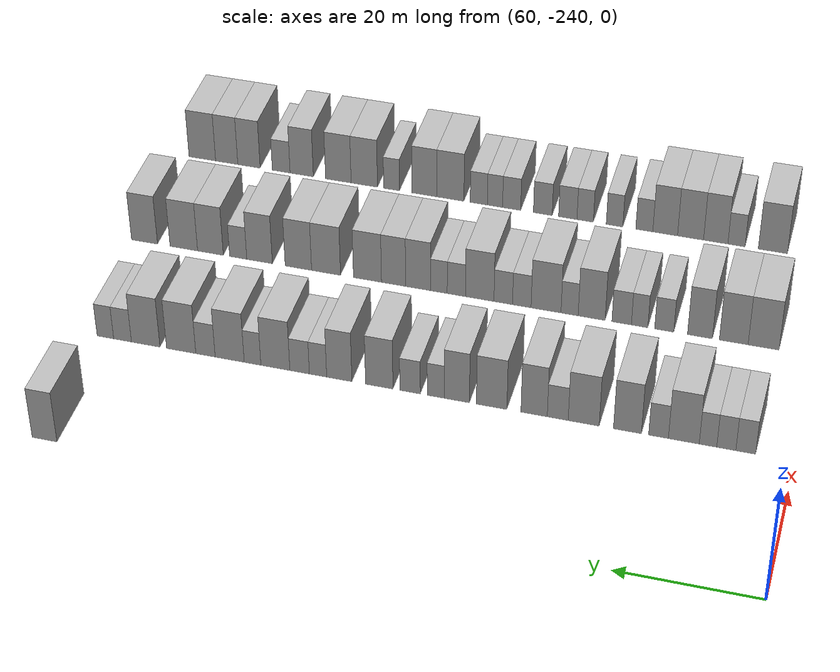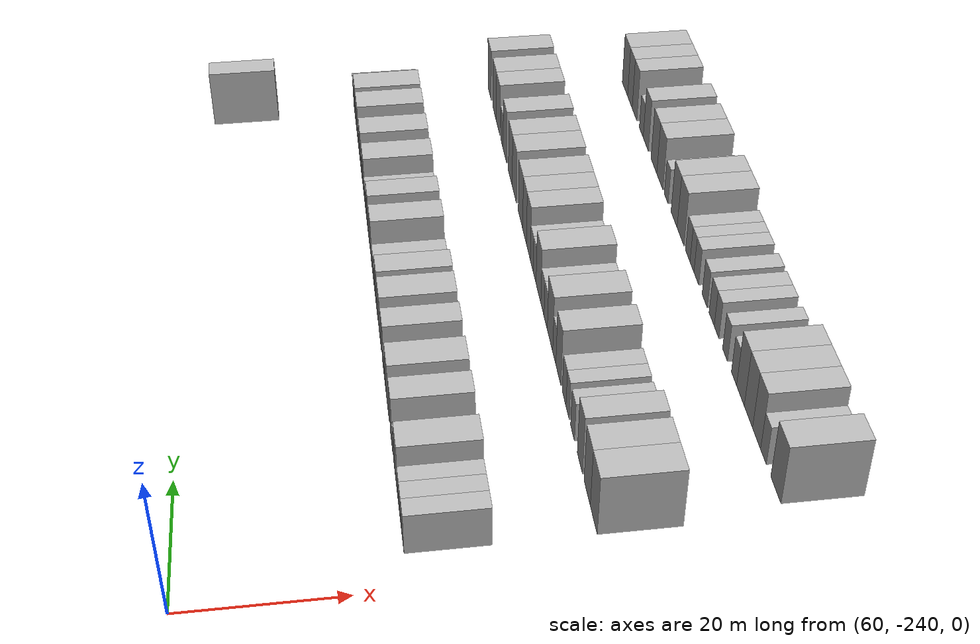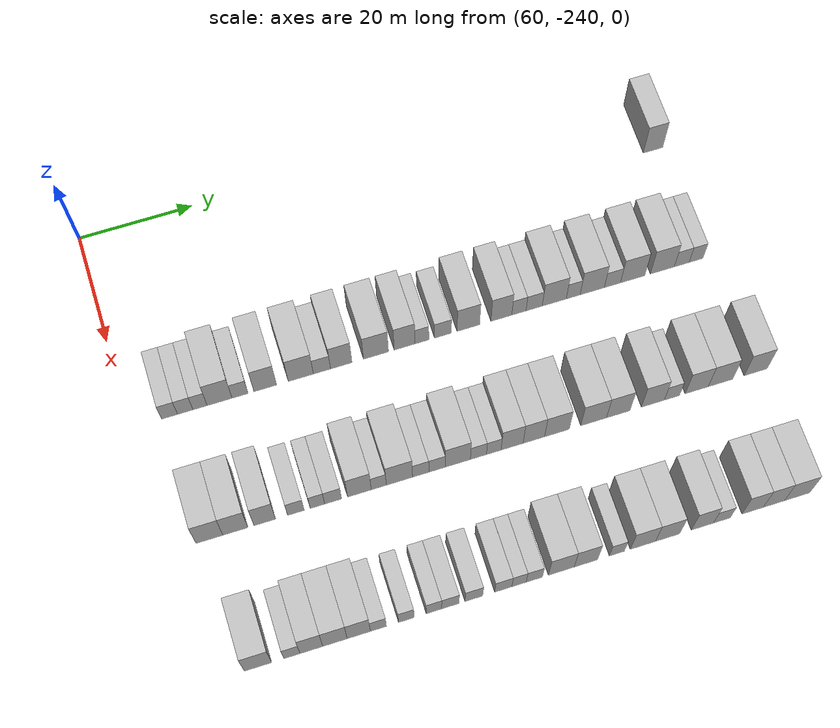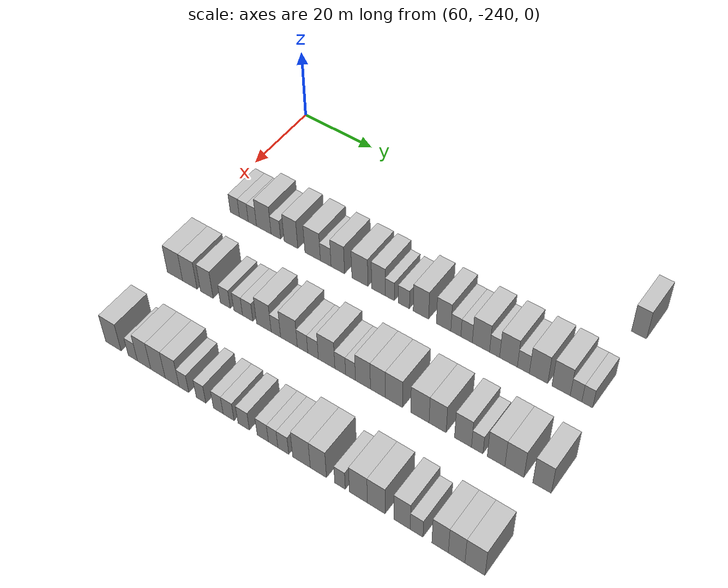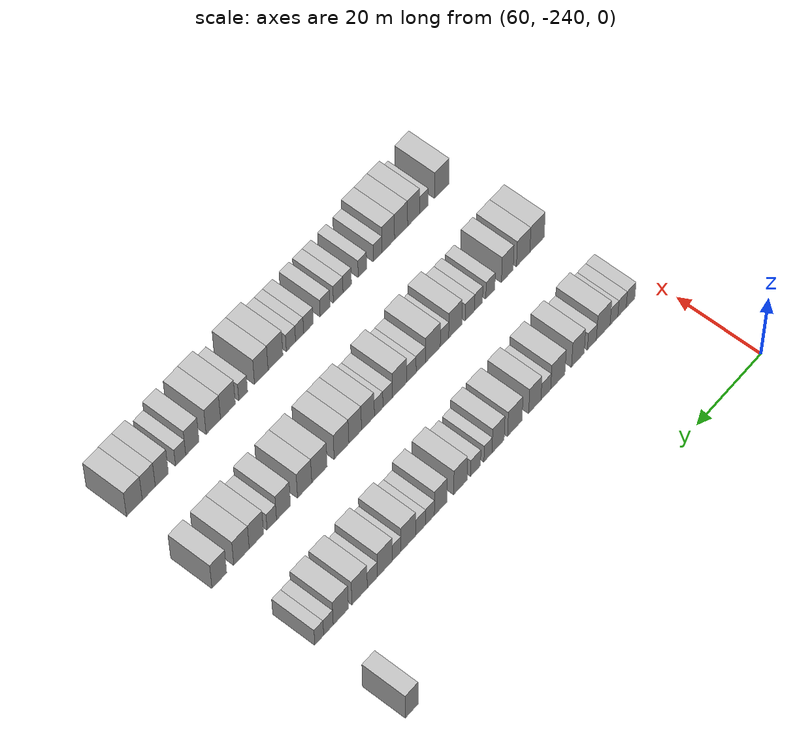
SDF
<sdf version="1.6">
 <world name="default">
  <model name="building_421">
   <static>1</static>
   <pose>69.0000 -140.4311 0 0.000000 0.000000 0.000000</pose>
   <link name="link">
    <pose>0 0 4.50 0 0 0</pose>
    <collision name="collision"><geometry><box><size>10.0000 3.6135 9.0000</size></box></geometry></collision>
    <visual name="visual">
     <cast_shadows>0</cast_shadows>
     <geometry><box><size>10.0000 3.6135 9.0000</size></box></geometry>
     <material>
      <script>
       <uri>model://HANNAS_wall/materials/scripts</uri>
       <uri>model://HANNAS_wall/materials/textures</uri>
       <name>vrc/HANNAS_wall</name>
      </script>
     </material>
    </visual>
   </link>
  </model>
  <model name="building_582">
   <static>1</static>
   <pose>91.0000 -233.3052 0 0.000000 0.000000 0.000000</pose>
   <link name="link">
    <pose>0 0 3.00 0 0 0</pose>
    <collision name="collision"><geometry><box><size>10.0000 2.7081 6.0000</size></box></geometry></collision>
    <visual name="visual">
     <cast_shadows>0</cast_shadows>
     <geometry><box><size>10.0000 2.7081 6.0000</size></box></geometry>
     <material>
      <script>
       <uri>model://HANNAS_wall/materials/scripts</uri>
       <uri>model://HANNAS_wall/materials/textures</uri>
       <name>vrc/HANNAS_wall</name>
      </script>
     </material>
    </visual>
   </link>
  </model>
  <model name="building_583">
   <static>1</static>
   <pose>91.0000 -230.6449 0 0.000000 0.000000 0.000000</pose>
   <link name="link">
    <pose>0 0 3.00 0 0 0</pose>
    <collision name="collision"><geometry><box><size>10.0000 2.6125 6.0000</size></box></geometry></collision>
    <visual name="visual">
     <cast_shadows>0</cast_shadows>
     <geometry><box><size>10.0000 2.6125 6.0000</size></box></geometry>
     <material>
      <script>
       <uri>model://HANNAS_wall/materials/scripts</uri>
       <uri>model://HANNAS_wall/materials/textures</uri>
       <name>vrc/HANNAS_wall</name>
      </script>
     </material>
    </visual>
   </link>
  </model>
  <model name="building_584">
   <static>1</static>
   <pose>91.0000 -228.1305 0 0.000000 0.000000 0.000000</pose>
   <link name="link">
    <pose>0 0 3.00 0 0 0</pose>
    <collision name="collision"><geometry><box><size>10.0000 2.4162 6.0000</size></box></geometry></collision>
    <visual name="visual">
     <cast_shadows>0</cast_shadows>
     <geometry><box><size>10.0000 2.4162 6.0000</size></box></geometry>
     <material>
      <script>
       <uri>model://HANNAS_wall/materials/scripts</uri>
       <uri>model://HANNAS_wall/materials/textures</uri>
       <name>vrc/HANNAS_wall</name>
      </script>
     </material>
    </visual>
   </link>
  </model>
  <model name="building_585">
   <static>1</static>
   <pose>91.0000 -224.7955 0 0.000000 0.000000 0.000000</pose>
   <link name="link">
    <pose>0 0 4.50 0 0 0</pose>
    <collision name="collision"><geometry><box><size>10.0000 4.2539 9.0000</size></box></geometry></collision>
    <visual name="visual">
     <cast_shadows>0</cast_shadows>
     <geometry><box><size>10.0000 4.2539 9.0000</size></box></geometry>
     <material>
      <script>
       <uri>model://HANNAS_wall/materials/scripts</uri>
       <uri>model://HANNAS_wall/materials/textures</uri>
       <name>vrc/HANNAS_wall</name>
      </script>
     </material>
    </visual>
   </link>
  </model>
  <model name="building_586">
   <static>1</static>
   <pose>91.0000 -221.2969 0 0.000000 0.000000 0.000000</pose>
   <link name="link">
    <pose>0 0 3.00 0 0 0</pose>
    <collision name="collision"><geometry><box><size>10.0000 2.7432 6.0000</size></box></geometry></collision>
    <visual name="visual">
     <cast_shadows>0</cast_shadows>
     <geometry><box><size>10.0000 2.7432 6.0000</size></box></geometry>
     <material>
      <script>
       <uri>model://HANNAS_wall/materials/scripts</uri>
       <uri>model://HANNAS_wall/materials/textures</uri>
       <name>vrc/HANNAS_wall</name>
      </script>
     </material>
    </visual>
   </link>
  </model>
  <model name="building_587">
   <static>1</static>
   <pose>91.0000 -216.9777 0 0.000000 0.000000 0.000000</pose>
   <link name="link">
    <pose>0 0 4.50 0 0 0</pose>
    <collision name="collision"><geometry><box><size>10.0000 3.8952 9.0000</size></box></geometry></collision>
    <visual name="visual">
     <cast_shadows>0</cast_shadows>
     <geometry><box><size>10.0000 3.8952 9.0000</size></box></geometry>
     <material>
      <script>
       <uri>model://HANNAS_wall/materials/scripts</uri>
       <uri>model://HANNAS_wall/materials/textures</uri>
       <name>vrc/HANNAS_wall</name>
      </script>
     </material>
    </visual>
   </link>
  </model>
  <model name="building_588">
   <static>1</static>
   <pose>91.0000 -210.8539 0 0.000000 0.000000 0.000000</pose>
   <link name="link">
    <pose>0 0 4.50 0 0 0</pose>
    <collision name="collision"><geometry><box><size>10.0000 4.3524 9.0000</size></box></geometry></collision>
    <visual name="visual">
     <cast_shadows>0</cast_shadows>
     <geometry><box><size>10.0000 4.3524 9.0000</size></box></geometry>
     <material>
      <script>
       <uri>model://HANNAS_wall/materials/scripts</uri>
       <uri>model://HANNAS_wall/materials/textures</uri>
       <name>vrc/HANNAS_wall</name>
      </script>
     </material>
    </visual>
   </link>
  </model>
  <model name="building_589">
   <static>1</static>
   <pose>91.0000 -207.1994 0 0.000000 0.000000 0.000000</pose>
   <link name="link">
    <pose>0 0 3.00 0 0 0</pose>
    <collision name="collision"><geometry><box><size>10.0000 2.9566 6.0000</size></box></geometry></collision>
    <visual name="visual">
     <cast_shadows>0</cast_shadows>
     <geometry><box><size>10.0000 2.9566 6.0000</size></box></geometry>
     <material>
      <script>
       <uri>model://HANNAS_wall/materials/scripts</uri>
       <uri>model://HANNAS_wall/materials/textures</uri>
       <name>vrc/HANNAS_wall</name>
      </script>
     </material>
    </visual>
   </link>
  </model>
  <model name="building_590">
   <static>1</static>
   <pose>91.0000 -203.8594 0 0.000000 0.000000 0.000000</pose>
   <link name="link">
    <pose>0 0 4.50 0 0 0</pose>
    <collision name="collision"><geometry><box><size>10.0000 3.7233 9.0000</size></box></geometry></collision>
    <visual name="visual">
     <cast_shadows>0</cast_shadows>
     <geometry><box><size>10.0000 3.7233 9.0000</size></box></geometry>
     <material>
      <script>
       <uri>model://HANNAS_wall/materials/scripts</uri>
       <uri>model://HANNAS_wall/materials/textures</uri>
       <name>vrc/HANNAS_wall</name>
      </script>
     </material>
    </visual>
   </link>
  </model>
  <model name="building_591">
   <static>1</static>
   <pose>91.0000 -197.8227 0 0.000000 0.000000 0.000000</pose>
   <link name="link">
    <pose>0 0 4.50 0 0 0</pose>
    <collision name="collision"><geometry><box><size>10.0000 4.3500 9.0000</size></box></geometry></collision>
    <visual name="visual">
     <cast_shadows>0</cast_shadows>
     <geometry><box><size>10.0000 4.3500 9.0000</size></box></geometry>
     <material>
      <script>
       <uri>model://HANNAS_wall/materials/scripts</uri>
       <uri>model://HANNAS_wall/materials/textures</uri>
       <name>vrc/HANNAS_wall</name>
      </script>
     </material>
    </visual>
   </link>
  </model>
  <model name="building_592">
   <static>1</static>
   <pose>91.0000 -192.8297 0 0.000000 0.000000 0.000000</pose>
   <link name="link">
    <pose>0 0 4.50 0 0 0</pose>
    <collision name="collision"><geometry><box><size>10.0000 3.6360 9.0000</size></box></geometry></collision>
    <visual name="visual">
     <cast_shadows>0</cast_shadows>
     <geometry><box><size>10.0000 3.6360 9.0000</size></box></geometry>
     <material>
      <script>
       <uri>model://HANNAS_wall/materials/scripts</uri>
       <uri>model://HANNAS_wall/materials/textures</uri>
       <name>vrc/HANNAS_wall</name>
      </script>
     </material>
    </visual>
   </link>
  </model>
  <model name="building_593">
   <static>1</static>
   <pose>91.0000 -189.7980 0 0.000000 0.000000 0.000000</pose>
   <link name="link">
    <pose>0 0 3.00 0 0 0</pose>
    <collision name="collision"><geometry><box><size>10.0000 2.4274 6.0000</size></box></geometry></collision>
    <visual name="visual">
     <cast_shadows>0</cast_shadows>
     <geometry><box><size>10.0000 2.4274 6.0000</size></box></geometry>
     <material>
      <script>
       <uri>model://HANNAS_wall/materials/scripts</uri>
       <uri>model://HANNAS_wall/materials/textures</uri>
       <name>vrc/HANNAS_wall</name>
      </script>
     </material>
    </visual>
   </link>
  </model>
  <model name="building_594">
   <static>1</static>
   <pose>91.0000 -186.1057 0 0.000000 0.000000 0.000000</pose>
   <link name="link">
    <pose>0 0 3.00 0 0 0</pose>
    <collision name="collision"><geometry><box><size>10.0000 2.9573 6.0000</size></box></geometry></collision>
    <visual name="visual">
     <cast_shadows>0</cast_shadows>
     <geometry><box><size>10.0000 2.9573 6.0000</size></box></geometry>
     <material>
      <script>
       <uri>model://HANNAS_wall/materials/scripts</uri>
       <uri>model://HANNAS_wall/materials/textures</uri>
       <name>vrc/HANNAS_wall</name>
      </script>
     </material>
    </visual>
   </link>
  </model>
  <model name="building_595">
   <static>1</static>
   <pose>91.0000 -181.6321 0 0.000000 0.000000 0.000000</pose>
   <link name="link">
    <pose>0 0 4.50 0 0 0</pose>
    <collision name="collision"><geometry><box><size>10.0000 3.9899 9.0000</size></box></geometry></collision>
    <visual name="visual">
     <cast_shadows>0</cast_shadows>
     <geometry><box><size>10.0000 3.9899 9.0000</size></box></geometry>
     <material>
      <script>
       <uri>model://HANNAS_wall/materials/scripts</uri>
       <uri>model://HANNAS_wall/materials/textures</uri>
       <name>vrc/HANNAS_wall</name>
      </script>
     </material>
    </visual>
   </link>
  </model>
  <model name="building_596">
   <static>1</static>
   <pose>91.0000 -175.7890 0 0.000000 0.000000 0.000000</pose>
   <link name="link">
    <pose>0 0 4.50 0 0 0</pose>
    <collision name="collision"><geometry><box><size>10.0000 3.6963 9.0000</size></box></geometry></collision>
    <visual name="visual">
     <cast_shadows>0</cast_shadows>
     <geometry><box><size>10.0000 3.6963 9.0000</size></box></geometry>
     <material>
      <script>
       <uri>model://HANNAS_wall/materials/scripts</uri>
       <uri>model://HANNAS_wall/materials/textures</uri>
       <name>vrc/HANNAS_wall</name>
      </script>
     </material>
    </visual>
   </link>
  </model>
  <model name="building_597">
   <static>1</static>
   <pose>91.0000 -172.6681 0 0.000000 0.000000 0.000000</pose>
   <link name="link">
    <pose>0 0 3.00 0 0 0</pose>
    <collision name="collision"><geometry><box><size>10.0000 2.5456 6.0000</size></box></geometry></collision>
    <visual name="visual">
     <cast_shadows>0</cast_shadows>
     <geometry><box><size>10.0000 2.5456 6.0000</size></box></geometry>
     <material>
      <script>
       <uri>model://HANNAS_wall/materials/scripts</uri>
       <uri>model://HANNAS_wall/materials/textures</uri>
       <name>vrc/HANNAS_wall</name>
      </script>
     </material>
    </visual>
   </link>
  </model>
  <model name="building_598">
   <static>1</static>
   <pose>91.0000 -169.9560 0 0.000000 0.000000 0.000000</pose>
   <link name="link">
    <pose>0 0 3.00 0 0 0</pose>
    <collision name="collision"><geometry><box><size>10.0000 2.8785 6.0000</size></box></geometry></collision>
    <visual name="visual">
     <cast_shadows>0</cast_shadows>
     <geometry><box><size>10.0000 2.8785 6.0000</size></box></geometry>
     <material>
      <script>
       <uri>model://HANNAS_wall/materials/scripts</uri>
       <uri>model://HANNAS_wall/materials/textures</uri>
       <name>vrc/HANNAS_wall</name>
      </script>
     </material>
    </visual>
   </link>
  </model>
  <model name="building_599">
   <static>1</static>
   <pose>91.0000 -166.3699 0 0.000000 0.000000 0.000000</pose>
   <link name="link">
    <pose>0 0 4.50 0 0 0</pose>
    <collision name="collision"><geometry><box><size>10.0000 4.2938 9.0000</size></box></geometry></collision>
    <visual name="visual">
     <cast_shadows>0</cast_shadows>
     <geometry><box><size>10.0000 4.2938 9.0000</size></box></geometry>
     <material>
      <script>
       <uri>model://HANNAS_wall/materials/scripts</uri>
       <uri>model://HANNAS_wall/materials/textures</uri>
       <name>vrc/HANNAS_wall</name>
      </script>
     </material>
    </visual>
   </link>
  </model>
  <model name="building_600">
   <static>1</static>
   <pose>91.0000 -162.9819 0 0.000000 0.000000 0.000000</pose>
   <link name="link">
    <pose>0 0 3.00 0 0 0</pose>
    <collision name="collision"><geometry><box><size>10.0000 2.4821 6.0000</size></box></geometry></collision>
    <visual name="visual">
     <cast_shadows>0</cast_shadows>
     <geometry><box><size>10.0000 2.4821 6.0000</size></box></geometry>
     <material>
      <script>
       <uri>model://HANNAS_wall/materials/scripts</uri>
       <uri>model://HANNAS_wall/materials/textures</uri>
       <name>vrc/HANNAS_wall</name>
      </script>
     </material>
    </visual>
   </link>
  </model>
  <model name="building_601">
   <static>1</static>
   <pose>91.0000 -159.5711 0 0.000000 0.000000 0.000000</pose>
   <link name="link">
    <pose>0 0 4.50 0 0 0</pose>
    <collision name="collision"><geometry><box><size>10.0000 4.3395 9.0000</size></box></geometry></collision>
    <visual name="visual">
     <cast_shadows>0</cast_shadows>
     <geometry><box><size>10.0000 4.3395 9.0000</size></box></geometry>
     <material>
      <script>
       <uri>model://HANNAS_wall/materials/scripts</uri>
       <uri>model://HANNAS_wall/materials/textures</uri>
       <name>vrc/HANNAS_wall</name>
      </script>
     </material>
    </visual>
   </link>
  </model>
  <model name="building_602">
   <static>1</static>
   <pose>91.0000 -155.9481 0 0.000000 0.000000 0.000000</pose>
   <link name="link">
    <pose>0 0 3.00 0 0 0</pose>
    <collision name="collision"><geometry><box><size>10.0000 2.9065 6.0000</size></box></geometry></collision>
    <visual name="visual">
     <cast_shadows>0</cast_shadows>
     <geometry><box><size>10.0000 2.9065 6.0000</size></box></geometry>
     <material>
      <script>
       <uri>model://HANNAS_wall/materials/scripts</uri>
       <uri>model://HANNAS_wall/materials/textures</uri>
       <name>vrc/HANNAS_wall</name>
      </script>
     </material>
    </visual>
   </link>
  </model>
  <model name="building_603">
   <static>1</static>
   <pose>91.0000 -152.2924 0 0.000000 0.000000 0.000000</pose>
   <link name="link">
    <pose>0 0 4.50 0 0 0</pose>
    <collision name="collision"><geometry><box><size>10.0000 4.4049 9.0000</size></box></geometry></collision>
    <visual name="visual">
     <cast_shadows>0</cast_shadows>
     <geometry><box><size>10.0000 4.4049 9.0000</size></box></geometry>
     <material>
      <script>
       <uri>model://HANNAS_wall/materials/scripts</uri>
       <uri>model://HANNAS_wall/materials/textures</uri>
       <name>vrc/HANNAS_wall</name>
      </script>
     </material>
    </visual>
   </link>
  </model>
  <model name="building_604">
   <static>1</static>
   <pose>91.0000 -146.9238 0 0.000000 0.000000 0.000000</pose>
   <link name="link">
    <pose>0 0 4.50 0 0 0</pose>
    <collision name="collision"><geometry><box><size>10.0000 4.3322 9.0000</size></box></geometry></collision>
    <visual name="visual">
     <cast_shadows>0</cast_shadows>
     <geometry><box><size>10.0000 4.3322 9.0000</size></box></geometry>
     <material>
      <script>
       <uri>model://HANNAS_wall/materials/scripts</uri>
       <uri>model://HANNAS_wall/materials/textures</uri>
       <name>vrc/HANNAS_wall</name>
      </script>
     </material>
    </visual>
   </link>
  </model>
  <model name="building_605">
   <static>1</static>
   <pose>91.0000 -143.4036 0 0.000000 0.000000 0.000000</pose>
   <link name="link">
    <pose>0 0 3.00 0 0 0</pose>
    <collision name="collision"><geometry><box><size>10.0000 2.7082 6.0000</size></box></geometry></collision>
    <visual name="visual">
     <cast_shadows>0</cast_shadows>
     <geometry><box><size>10.0000 2.7082 6.0000</size></box></geometry>
     <material>
      <script>
       <uri>model://HANNAS_wall/materials/scripts</uri>
       <uri>model://HANNAS_wall/materials/textures</uri>
       <name>vrc/HANNAS_wall</name>
      </script>
     </material>
    </visual>
   </link>
  </model>
  <model name="building_606">
   <static>1</static>
   <pose>91.0000 -140.7913 0 0.000000 0.000000 0.000000</pose>
   <link name="link">
    <pose>0 0 3.00 0 0 0</pose>
    <collision name="collision"><geometry><box><size>10.0000 2.5163 6.0000</size></box></geometry></collision>
    <visual name="visual">
     <cast_shadows>0</cast_shadows>
     <geometry><box><size>10.0000 2.5163 6.0000</size></box></geometry>
     <material>
      <script>
       <uri>model://HANNAS_wall/materials/scripts</uri>
       <uri>model://HANNAS_wall/materials/textures</uri>
       <name>vrc/HANNAS_wall</name>
      </script>
     </material>
    </visual>
   </link>
  </model>
  <model name="building_768">
   <static>1</static>
   <pose>113.0000 -232.3847 0 0.000000 0.000000 0.000000</pose>
   <link name="link">
    <pose>0 0 4.50 0 0 0</pose>
    <collision name="collision"><geometry><box><size>10.0000 4.4472 9.0000</size></box></geometry></collision>
    <visual name="visual">
     <cast_shadows>0</cast_shadows>
     <geometry><box><size>10.0000 4.4472 9.0000</size></box></geometry>
     <material>
      <script>
       <uri>model://HANNAS_wall/materials/scripts</uri>
       <uri>model://HANNAS_wall/materials/textures</uri>
       <name>vrc/HANNAS_wall</name>
      </script>
     </material>
    </visual>
   </link>
  </model>
  <model name="building_769">
   <static>1</static>
   <pose>113.0000 -228.0858 0 0.000000 0.000000 0.000000</pose>
   <link name="link">
    <pose>0 0 4.50 0 0 0</pose>
    <collision name="collision"><geometry><box><size>10.0000 4.1505 9.0000</size></box></geometry></collision>
    <visual name="visual">
     <cast_shadows>0</cast_shadows>
     <geometry><box><size>10.0000 4.1505 9.0000</size></box></geometry>
     <material>
      <script>
       <uri>model://HANNAS_wall/materials/scripts</uri>
       <uri>model://HANNAS_wall/materials/textures</uri>
       <name>vrc/HANNAS_wall</name>
      </script>
     </material>
    </visual>
   </link>
  </model>
  <model name="building_770">
   <static>1</static>
   <pose>113.0000 -223.2035 0 0.000000 0.000000 0.000000</pose>
   <link name="link">
    <pose>0 0 4.50 0 0 0</pose>
    <collision name="collision"><geometry><box><size>10.0000 3.6142 9.0000</size></box></geometry></collision>
    <visual name="visual">
     <cast_shadows>0</cast_shadows>
     <geometry><box><size>10.0000 3.6142 9.0000</size></box></geometry>
     <material>
      <script>
       <uri>model://HANNAS_wall/materials/scripts</uri>
       <uri>model://HANNAS_wall/materials/textures</uri>
       <name>vrc/HANNAS_wall</name>
      </script>
     </material>
    </visual>
   </link>
  </model>
  <model name="building_771">
   <static>1</static>
   <pose>113.0000 -218.0023 0 0.000000 0.000000 0.000000</pose>
   <link name="link">
    <pose>0 0 3.00 0 0 0</pose>
    <collision name="collision"><geometry><box><size>10.0000 2.7884 6.0000</size></box></geometry></collision>
    <visual name="visual">
     <cast_shadows>0</cast_shadows>
     <geometry><box><size>10.0000 2.7884 6.0000</size></box></geometry>
     <material>
      <script>
       <uri>model://HANNAS_wall/materials/scripts</uri>
       <uri>model://HANNAS_wall/materials/textures</uri>
       <name>vrc/HANNAS_wall</name>
      </script>
     </material>
    </visual>
   </link>
  </model>
  <model name="building_772">
   <static>1</static>
   <pose>113.0000 -214.3995 0 0.000000 0.000000 0.000000</pose>
   <link name="link">
    <pose>0 0 3.00 0 0 0</pose>
    <collision name="collision"><geometry><box><size>10.0000 2.4170 6.0000</size></box></geometry></collision>
    <visual name="visual">
     <cast_shadows>0</cast_shadows>
     <geometry><box><size>10.0000 2.4170 6.0000</size></box></geometry>
     <material>
      <script>
       <uri>model://HANNAS_wall/materials/scripts</uri>
       <uri>model://HANNAS_wall/materials/textures</uri>
       <name>vrc/HANNAS_wall</name>
      </script>
     </material>
    </visual>
   </link>
  </model>
  <model name="building_773">
   <static>1</static>
   <pose>113.0000 -211.7596 0 0.000000 0.000000 0.000000</pose>
   <link name="link">
    <pose>0 0 3.00 0 0 0</pose>
    <collision name="collision"><geometry><box><size>10.0000 2.8628 6.0000</size></box></geometry></collision>
    <visual name="visual">
     <cast_shadows>0</cast_shadows>
     <geometry><box><size>10.0000 2.8628 6.0000</size></box></geometry>
     <material>
      <script>
       <uri>model://HANNAS_wall/materials/scripts</uri>
       <uri>model://HANNAS_wall/materials/textures</uri>
       <name>vrc/HANNAS_wall</name>
      </script>
     </material>
    </visual>
   </link>
  </model>
  <model name="building_774">
   <static>1</static>
   <pose>113.0000 -207.3348 0 0.000000 0.000000 0.000000</pose>
   <link name="link">
    <pose>0 0 4.50 0 0 0</pose>
    <collision name="collision"><geometry><box><size>10.0000 3.9868 9.0000</size></box></geometry></collision>
    <visual name="visual">
     <cast_shadows>0</cast_shadows>
     <geometry><box><size>10.0000 3.9868 9.0000</size></box></geometry>
     <material>
      <script>
       <uri>model://HANNAS_wall/materials/scripts</uri>
       <uri>model://HANNAS_wall/materials/textures</uri>
       <name>vrc/HANNAS_wall</name>
      </script>
     </material>
    </visual>
   </link>
  </model>
  <model name="building_775">
   <static>1</static>
   <pose>113.0000 -204.0684 0 0.000000 0.000000 0.000000</pose>
   <link name="link">
    <pose>0 0 3.00 0 0 0</pose>
    <collision name="collision"><geometry><box><size>10.0000 2.5459 6.0000</size></box></geometry></collision>
    <visual name="visual">
     <cast_shadows>0</cast_shadows>
     <geometry><box><size>10.0000 2.5459 6.0000</size></box></geometry>
     <material>
      <script>
       <uri>model://HANNAS_wall/materials/scripts</uri>
       <uri>model://HANNAS_wall/materials/textures</uri>
       <name>vrc/HANNAS_wall</name>
      </script>
     </material>
    </visual>
   </link>
  </model>
  <model name="building_776">
   <static>1</static>
   <pose>113.0000 -200.5665 0 0.000000 0.000000 0.000000</pose>
   <link name="link">
    <pose>0 0 4.50 0 0 0</pose>
    <collision name="collision"><geometry><box><size>10.0000 4.4580 9.0000</size></box></geometry></collision>
    <visual name="visual">
     <cast_shadows>0</cast_shadows>
     <geometry><box><size>10.0000 4.4580 9.0000</size></box></geometry>
     <material>
      <script>
       <uri>model://HANNAS_wall/materials/scripts</uri>
       <uri>model://HANNAS_wall/materials/textures</uri>
       <name>vrc/HANNAS_wall</name>
      </script>
     </material>
    </visual>
   </link>
  </model>
  <model name="building_777">
   <static>1</static>
   <pose>113.0000 -196.9502 0 0.000000 0.000000 0.000000</pose>
   <link name="link">
    <pose>0 0 3.00 0 0 0</pose>
    <collision name="collision"><geometry><box><size>10.0000 2.7746 6.0000</size></box></geometry></collision>
    <visual name="visual">
     <cast_shadows>0</cast_shadows>
     <geometry><box><size>10.0000 2.7746 6.0000</size></box></geometry>
     <material>
      <script>
       <uri>model://HANNAS_wall/materials/scripts</uri>
       <uri>model://HANNAS_wall/materials/textures</uri>
       <name>vrc/HANNAS_wall</name>
      </script>
     </material>
    </visual>
   </link>
  </model>
  <model name="building_778">
   <static>1</static>
   <pose>113.0000 -194.1713 0 0.000000 0.000000 0.000000</pose>
   <link name="link">
    <pose>0 0 3.00 0 0 0</pose>
    <collision name="collision"><geometry><box><size>10.0000 2.7833 6.0000</size></box></geometry></collision>
    <visual name="visual">
     <cast_shadows>0</cast_shadows>
     <geometry><box><size>10.0000 2.7833 6.0000</size></box></geometry>
     <material>
      <script>
       <uri>model://HANNAS_wall/materials/scripts</uri>
       <uri>model://HANNAS_wall/materials/textures</uri>
       <name>vrc/HANNAS_wall</name>
      </script>
     </material>
    </visual>
   </link>
  </model>
  <model name="building_779">
   <static>1</static>
   <pose>113.0000 -190.6295 0 0.000000 0.000000 0.000000</pose>
   <link name="link">
    <pose>0 0 4.50 0 0 0</pose>
    <collision name="collision"><geometry><box><size>10.0000 4.3003 9.0000</size></box></geometry></collision>
    <visual name="visual">
     <cast_shadows>0</cast_shadows>
     <geometry><box><size>10.0000 4.3003 9.0000</size></box></geometry>
     <material>
      <script>
       <uri>model://HANNAS_wall/materials/scripts</uri>
       <uri>model://HANNAS_wall/materials/textures</uri>
       <name>vrc/HANNAS_wall</name>
      </script>
     </material>
    </visual>
   </link>
  </model>
  <model name="building_780">
   <static>1</static>
   <pose>113.0000 -187.0974 0 0.000000 0.000000 0.000000</pose>
   <link name="link">
    <pose>0 0 3.00 0 0 0</pose>
    <collision name="collision"><geometry><box><size>10.0000 2.7639 6.0000</size></box></geometry></collision>
    <visual name="visual">
     <cast_shadows>0</cast_shadows>
     <geometry><box><size>10.0000 2.7639 6.0000</size></box></geometry>
     <material>
      <script>
       <uri>model://HANNAS_wall/materials/scripts</uri>
       <uri>model://HANNAS_wall/materials/textures</uri>
       <name>vrc/HANNAS_wall</name>
      </script>
     </material>
    </visual>
   </link>
  </model>
  <model name="building_781">
   <static>1</static>
   <pose>113.0000 -184.4587 0 0.000000 0.000000 0.000000</pose>
   <link name="link">
    <pose>0 0 3.00 0 0 0</pose>
    <collision name="collision"><geometry><box><size>10.0000 2.5134 6.0000</size></box></geometry></collision>
    <visual name="visual">
     <cast_shadows>0</cast_shadows>
     <geometry><box><size>10.0000 2.5134 6.0000</size></box></geometry>
     <material>
      <script>
       <uri>model://HANNAS_wall/materials/scripts</uri>
       <uri>model://HANNAS_wall/materials/textures</uri>
       <name>vrc/HANNAS_wall</name>
      </script>
     </material>
    </visual>
   </link>
  </model>
  <model name="building_782">
   <static>1</static>
   <pose>113.0000 -181.3014 0 0.000000 0.000000 0.000000</pose>
   <link name="link">
    <pose>0 0 4.50 0 0 0</pose>
    <collision name="collision"><geometry><box><size>10.0000 3.8011 9.0000</size></box></geometry></collision>
    <visual name="visual">
     <cast_shadows>0</cast_shadows>
     <geometry><box><size>10.0000 3.8011 9.0000</size></box></geometry>
     <material>
      <script>
       <uri>model://HANNAS_wall/materials/scripts</uri>
       <uri>model://HANNAS_wall/materials/textures</uri>
       <name>vrc/HANNAS_wall</name>
      </script>
     </material>
    </visual>
   </link>
  </model>
  <model name="building_783">
   <static>1</static>
   <pose>113.0000 -177.5494 0 0.000000 0.000000 0.000000</pose>
   <link name="link">
    <pose>0 0 4.50 0 0 0</pose>
    <collision name="collision"><geometry><box><size>10.0000 3.7029 9.0000</size></box></geometry></collision>
    <visual name="visual">
     <cast_shadows>0</cast_shadows>
     <geometry><box><size>10.0000 3.7029 9.0000</size></box></geometry>
     <material>
      <script>
       <uri>model://HANNAS_wall/materials/scripts</uri>
       <uri>model://HANNAS_wall/materials/textures</uri>
       <name>vrc/HANNAS_wall</name>
      </script>
     </material>
    </visual>
   </link>
  </model>
  <model name="building_784">
   <static>1</static>
   <pose>113.0000 -173.5466 0 0.000000 0.000000 0.000000</pose>
   <link name="link">
    <pose>0 0 4.50 0 0 0</pose>
    <collision name="collision"><geometry><box><size>10.0000 4.3028 9.0000</size></box></geometry></collision>
    <visual name="visual">
     <cast_shadows>0</cast_shadows>
     <geometry><box><size>10.0000 4.3028 9.0000</size></box></geometry>
     <material>
      <script>
       <uri>model://HANNAS_wall/materials/scripts</uri>
       <uri>model://HANNAS_wall/materials/textures</uri>
       <name>vrc/HANNAS_wall</name>
      </script>
     </material>
    </visual>
   </link>
  </model>
  <model name="building_785">
   <static>1</static>
   <pose>113.0000 -167.1536 0 0.000000 0.000000 0.000000</pose>
   <link name="link">
    <pose>0 0 4.50 0 0 0</pose>
    <collision name="collision"><geometry><box><size>10.0000 4.4832 9.0000</size></box></geometry></collision>
    <visual name="visual">
     <cast_shadows>0</cast_shadows>
     <geometry><box><size>10.0000 4.4832 9.0000</size></box></geometry>
     <material>
      <script>
       <uri>model://HANNAS_wall/materials/scripts</uri>
       <uri>model://HANNAS_wall/materials/textures</uri>
       <name>vrc/HANNAS_wall</name>
      </script>
     </material>
    </visual>
   </link>
  </model>
  <model name="building_786">
   <static>1</static>
   <pose>113.0000 -162.8579 0 0.000000 0.000000 0.000000</pose>
   <link name="link">
    <pose>0 0 4.50 0 0 0</pose>
    <collision name="collision"><geometry><box><size>10.0000 4.1083 9.0000</size></box></geometry></collision>
    <visual name="visual">
     <cast_shadows>0</cast_shadows>
     <geometry><box><size>10.0000 4.1083 9.0000</size></box></geometry>
     <material>
      <script>
       <uri>model://HANNAS_wall/materials/scripts</uri>
       <uri>model://HANNAS_wall/materials/textures</uri>
       <name>vrc/HANNAS_wall</name>
      </script>
     </material>
    </visual>
   </link>
  </model>
  <model name="building_787">
   <static>1</static>
   <pose>113.0000 -156.7992 0 0.000000 0.000000 0.000000</pose>
   <link name="link">
    <pose>0 0 4.50 0 0 0</pose>
    <collision name="collision"><geometry><box><size>10.0000 4.0091 9.0000</size></box></geometry></collision>
    <visual name="visual">
     <cast_shadows>0</cast_shadows>
     <geometry><box><size>10.0000 4.0091 9.0000</size></box></geometry>
     <material>
      <script>
       <uri>model://HANNAS_wall/materials/scripts</uri>
       <uri>model://HANNAS_wall/materials/textures</uri>
       <name>vrc/HANNAS_wall</name>
      </script>
     </material>
    </visual>
   </link>
  </model>
  <model name="building_788">
   <static>1</static>
   <pose>113.0000 -153.4481 0 0.000000 0.000000 0.000000</pose>
   <link name="link">
    <pose>0 0 3.00 0 0 0</pose>
    <collision name="collision"><geometry><box><size>10.0000 2.6932 6.0000</size></box></geometry></collision>
    <visual name="visual">
     <cast_shadows>0</cast_shadows>
     <geometry><box><size>10.0000 2.6932 6.0000</size></box></geometry>
     <material>
      <script>
       <uri>model://HANNAS_wall/materials/scripts</uri>
       <uri>model://HANNAS_wall/materials/textures</uri>
       <name>vrc/HANNAS_wall</name>
      </script>
     </material>
    </visual>
   </link>
  </model>
  <model name="building_789">
   <static>1</static>
   <pose>113.0000 -149.0669 0 0.000000 0.000000 0.000000</pose>
   <link name="link">
    <pose>0 0 4.50 0 0 0</pose>
    <collision name="collision"><geometry><box><size>10.0000 4.0693 9.0000</size></box></geometry></collision>
    <visual name="visual">
     <cast_shadows>0</cast_shadows>
     <geometry><box><size>10.0000 4.0693 9.0000</size></box></geometry>
     <material>
      <script>
       <uri>model://HANNAS_wall/materials/scripts</uri>
       <uri>model://HANNAS_wall/materials/textures</uri>
       <name>vrc/HANNAS_wall</name>
      </script>
     </material>
    </visual>
   </link>
  </model>
  <model name="building_790">
   <static>1</static>
   <pose>113.0000 -144.8475 0 0.000000 0.000000 0.000000</pose>
   <link name="link">
    <pose>0 0 4.50 0 0 0</pose>
    <collision name="collision"><geometry><box><size>10.0000 4.3695 9.0000</size></box></geometry></collision>
    <visual name="visual">
     <cast_shadows>0</cast_shadows>
     <geometry><box><size>10.0000 4.3695 9.0000</size></box></geometry>
     <material>
      <script>
       <uri>model://HANNAS_wall/materials/scripts</uri>
       <uri>model://HANNAS_wall/materials/textures</uri>
       <name>vrc/HANNAS_wall</name>
      </script>
     </material>
    </visual>
   </link>
  </model>
  <model name="building_791">
   <static>1</static>
   <pose>113.0000 -138.5895 0 0.000000 0.000000 0.000000</pose>
   <link name="link">
    <pose>0 0 4.50 0 0 0</pose>
    <collision name="collision"><geometry><box><size>10.0000 4.1465 9.0000</size></box></geometry></collision>
    <visual name="visual">
     <cast_shadows>0</cast_shadows>
     <geometry><box><size>10.0000 4.1465 9.0000</size></box></geometry>
     <material>
      <script>
       <uri>model://HANNAS_wall/materials/scripts</uri>
       <uri>model://HANNAS_wall/materials/textures</uri>
       <name>vrc/HANNAS_wall</name>
      </script>
     </material>
    </visual>
   </link>
  </model>
  <model name="building_949">
   <static>1</static>
   <pose>135.0000 -230.4366 0 0.000000 0.000000 0.000000</pose>
   <link name="link">
    <pose>0 0 4.50 0 0 0</pose>
    <collision name="collision"><geometry><box><size>10.0000 4.3927 9.0000</size></box></geometry></collision>
    <visual name="visual">
     <cast_shadows>0</cast_shadows>
     <geometry><box><size>10.0000 4.3927 9.0000</size></box></geometry>
     <material>
      <script>
       <uri>model://HANNAS_wall/materials/scripts</uri>
       <uri>model://HANNAS_wall/materials/textures</uri>
       <name>vrc/HANNAS_wall</name>
      </script>
     </material>
    </visual>
   </link>
  </model>
  <model name="building_950">
   <static>1</static>
   <pose>135.0000 -224.9396 0 0.000000 0.000000 0.000000</pose>
   <link name="link">
    <pose>0 0 3.00 0 0 0</pose>
    <collision name="collision"><geometry><box><size>10.0000 2.6015 6.0000</size></box></geometry></collision>
    <visual name="visual">
     <cast_shadows>0</cast_shadows>
     <geometry><box><size>10.0000 2.6015 6.0000</size></box></geometry>
     <material>
      <script>
       <uri>model://HANNAS_wall/materials/scripts</uri>
       <uri>model://HANNAS_wall/materials/textures</uri>
       <name>vrc/HANNAS_wall</name>
      </script>
     </material>
    </visual>
   </link>
  </model>
  <model name="building_951">
   <static>1</static>
   <pose>135.0000 -221.7846 0 0.000000 0.000000 0.000000</pose>
   <link name="link">
    <pose>0 0 4.50 0 0 0</pose>
    <collision name="collision"><geometry><box><size>10.0000 3.7084 9.0000</size></box></geometry></collision>
    <visual name="visual">
     <cast_shadows>0</cast_shadows>
     <geometry><box><size>10.0000 3.7084 9.0000</size></box></geometry>
     <material>
      <script>
       <uri>model://HANNAS_wall/materials/scripts</uri>
       <uri>model://HANNAS_wall/materials/textures</uri>
       <name>vrc/HANNAS_wall</name>
      </script>
     </material>
    </visual>
   </link>
  </model>
  <model name="building_952">
   <static>1</static>
   <pose>135.0000 -217.9448 0 0.000000 0.000000 0.000000</pose>
   <link name="link">
    <pose>0 0 4.50 0 0 0</pose>
    <collision name="collision"><geometry><box><size>10.0000 3.9713 9.0000</size></box></geometry></collision>
    <visual name="visual">
     <cast_shadows>0</cast_shadows>
     <geometry><box><size>10.0000 3.9713 9.0000</size></box></geometry>
     <material>
      <script>
       <uri>model://HANNAS_wall/materials/scripts</uri>
       <uri>model://HANNAS_wall/materials/textures</uri>
       <name>vrc/HANNAS_wall</name>
      </script>
     </material>
    </visual>
   </link>
  </model>
  <model name="building_953">
   <static>1</static>
   <pose>135.0000 -214.0605 0 0.000000 0.000000 0.000000</pose>
   <link name="link">
    <pose>0 0 4.50 0 0 0</pose>
    <collision name="collision"><geometry><box><size>10.0000 3.7972 9.0000</size></box></geometry></collision>
    <visual name="visual">
     <cast_shadows>0</cast_shadows>
     <geometry><box><size>10.0000 3.7972 9.0000</size></box></geometry>
     <material>
      <script>
       <uri>model://HANNAS_wall/materials/scripts</uri>
       <uri>model://HANNAS_wall/materials/textures</uri>
       <name>vrc/HANNAS_wall</name>
      </script>
     </material>
    </visual>
   </link>
  </model>
  <model name="building_954">
   <static>1</static>
   <pose>135.0000 -210.8517 0 0.000000 0.000000 0.000000</pose>
   <link name="link">
    <pose>0 0 3.00 0 0 0</pose>
    <collision name="collision"><geometry><box><size>10.0000 2.6204 6.0000</size></box></geometry></collision>
    <visual name="visual">
     <cast_shadows>0</cast_shadows>
     <geometry><box><size>10.0000 2.6204 6.0000</size></box></geometry>
     <material>
      <script>
       <uri>model://HANNAS_wall/materials/scripts</uri>
       <uri>model://HANNAS_wall/materials/textures</uri>
       <name>vrc/HANNAS_wall</name>
      </script>
     </material>
    </visual>
   </link>
  </model>
  <model name="building_955">
   <static>1</static>
   <pose>135.0000 -206.2585 0 0.000000 0.000000 0.000000</pose>
   <link name="link">
    <pose>0 0 3.00 0 0 0</pose>
    <collision name="collision"><geometry><box><size>10.0000 2.5659 6.0000</size></box></geometry></collision>
    <visual name="visual">
     <cast_shadows>0</cast_shadows>
     <geometry><box><size>10.0000 2.5659 6.0000</size></box></geometry>
     <material>
      <script>
       <uri>model://HANNAS_wall/materials/scripts</uri>
       <uri>model://HANNAS_wall/materials/textures</uri>
       <name>vrc/HANNAS_wall</name>
      </script>
     </material>
    </visual>
   </link>
  </model>
  <model name="building_956">
   <static>1</static>
   <pose>135.0000 -201.6994 0 0.000000 0.000000 0.000000</pose>
   <link name="link">
    <pose>0 0 3.00 0 0 0</pose>
    <collision name="collision"><geometry><box><size>10.0000 2.5523 6.0000</size></box></geometry></collision>
    <visual name="visual">
     <cast_shadows>0</cast_shadows>
     <geometry><box><size>10.0000 2.5523 6.0000</size></box></geometry>
     <material>
      <script>
       <uri>model://HANNAS_wall/materials/scripts</uri>
       <uri>model://HANNAS_wall/materials/textures</uri>
       <name>vrc/HANNAS_wall</name>
      </script>
     </material>
    </visual>
   </link>
  </model>
  <model name="building_957">
   <static>1</static>
   <pose>135.0000 -198.9895 0 0.000000 0.000000 0.000000</pose>
   <link name="link">
    <pose>0 0 3.00 0 0 0</pose>
    <collision name="collision"><geometry><box><size>10.0000 2.8675 6.0000</size></box></geometry></collision>
    <visual name="visual">
     <cast_shadows>0</cast_shadows>
     <geometry><box><size>10.0000 2.8675 6.0000</size></box></geometry>
     <material>
      <script>
       <uri>model://HANNAS_wall/materials/scripts</uri>
       <uri>model://HANNAS_wall/materials/textures</uri>
       <name>vrc/HANNAS_wall</name>
      </script>
     </material>
    </visual>
   </link>
  </model>
  <model name="building_958">
   <static>1</static>
   <pose>135.0000 -195.0845 0 0.000000 0.000000 0.000000</pose>
   <link name="link">
    <pose>0 0 3.00 0 0 0</pose>
    <collision name="collision"><geometry><box><size>10.0000 2.9425 6.0000</size></box></geometry></collision>
    <visual name="visual">
     <cast_shadows>0</cast_shadows>
     <geometry><box><size>10.0000 2.9425 6.0000</size></box></geometry>
     <material>
      <script>
       <uri>model://HANNAS_wall/materials/scripts</uri>
       <uri>model://HANNAS_wall/materials/textures</uri>
       <name>vrc/HANNAS_wall</name>
      </script>
     </material>
    </visual>
   </link>
  </model>
  <model name="building_959">
   <static>1</static>
   <pose>135.0000 -190.1868 0 0.000000 0.000000 0.000000</pose>
   <link name="link">
    <pose>0 0 3.00 0 0 0</pose>
    <collision name="collision"><geometry><box><size>10.0000 2.8530 6.0000</size></box></geometry></collision>
    <visual name="visual">
     <cast_shadows>0</cast_shadows>
     <geometry><box><size>10.0000 2.8530 6.0000</size></box></geometry>
     <material>
      <script>
       <uri>model://HANNAS_wall/materials/scripts</uri>
       <uri>model://HANNAS_wall/materials/textures</uri>
       <name>vrc/HANNAS_wall</name>
      </script>
     </material>
    </visual>
   </link>
  </model>
  <model name="building_960">
   <static>1</static>
   <pose>135.0000 -187.5570 0 0.000000 0.000000 0.000000</pose>
   <link name="link">
    <pose>0 0 3.00 0 0 0</pose>
    <collision name="collision"><geometry><box><size>10.0000 2.4065 6.0000</size></box></geometry></collision>
    <visual name="visual">
     <cast_shadows>0</cast_shadows>
     <geometry><box><size>10.0000 2.4065 6.0000</size></box></geometry>
     <material>
      <script>
       <uri>model://HANNAS_wall/materials/scripts</uri>
       <uri>model://HANNAS_wall/materials/textures</uri>
       <name>vrc/HANNAS_wall</name>
      </script>
     </material>
    </visual>
   </link>
  </model>
  <model name="building_961">
   <static>1</static>
   <pose>135.0000 -184.9972 0 0.000000 0.000000 0.000000</pose>
   <link name="link">
    <pose>0 0 3.00 0 0 0</pose>
    <collision name="collision"><geometry><box><size>10.0000 2.7131 6.0000</size></box></geometry></collision>
    <visual name="visual">
     <cast_shadows>0</cast_shadows>
     <geometry><box><size>10.0000 2.7131 6.0000</size></box></geometry>
     <material>
      <script>
       <uri>model://HANNAS_wall/materials/scripts</uri>
       <uri>model://HANNAS_wall/materials/textures</uri>
       <name>vrc/HANNAS_wall</name>
      </script>
     </material>
    </visual>
   </link>
  </model>
  <model name="building_962">
   <static>1</static>
   <pose>135.0000 -180.4703 0 0.000000 0.000000 0.000000</pose>
   <link name="link">
    <pose>0 0 4.50 0 0 0</pose>
    <collision name="collision"><geometry><box><size>10.0000 4.3408 9.0000</size></box></geometry></collision>
    <visual name="visual">
     <cast_shadows>0</cast_shadows>
     <geometry><box><size>10.0000 4.3408 9.0000</size></box></geometry>
     <material>
      <script>
       <uri>model://HANNAS_wall/materials/scripts</uri>
       <uri>model://HANNAS_wall/materials/textures</uri>
       <name>vrc/HANNAS_wall</name>
      </script>
     </material>
    </visual>
   </link>
  </model>
  <model name="building_963">
   <static>1</static>
   <pose>135.0000 -176.3216 0 0.000000 0.000000 0.000000</pose>
   <link name="link">
    <pose>0 0 4.50 0 0 0</pose>
    <collision name="collision"><geometry><box><size>10.0000 3.9565 9.0000</size></box></geometry></collision>
    <visual name="visual">
     <cast_shadows>0</cast_shadows>
     <geometry><box><size>10.0000 3.9565 9.0000</size></box></geometry>
     <material>
      <script>
       <uri>model://HANNAS_wall/materials/scripts</uri>
       <uri>model://HANNAS_wall/materials/textures</uri>
       <name>vrc/HANNAS_wall</name>
      </script>
     </material>
    </visual>
   </link>
  </model>
  <model name="building_964">
   <static>1</static>
   <pose>135.0000 -171.0704 0 0.000000 0.000000 0.000000</pose>
   <link name="link">
    <pose>0 0 3.00 0 0 0</pose>
    <collision name="collision"><geometry><box><size>10.0000 2.5460 6.0000</size></box></geometry></collision>
    <visual name="visual">
     <cast_shadows>0</cast_shadows>
     <geometry><box><size>10.0000 2.5460 6.0000</size></box></geometry>
     <material>
      <script>
       <uri>model://HANNAS_wall/materials/scripts</uri>
       <uri>model://HANNAS_wall/materials/textures</uri>
       <name>vrc/HANNAS_wall</name>
      </script>
     </material>
    </visual>
   </link>
  </model>
  <model name="building_965">
   <static>1</static>
   <pose>135.0000 -166.6662 0 0.000000 0.000000 0.000000</pose>
   <link name="link">
    <pose>0 0 4.50 0 0 0</pose>
    <collision name="collision"><geometry><box><size>10.0000 4.2625 9.0000</size></box></geometry></collision>
    <visual name="visual">
     <cast_shadows>0</cast_shadows>
     <geometry><box><size>10.0000 4.2625 9.0000</size></box></geometry>
     <material>
      <script>
       <uri>model://HANNAS_wall/materials/scripts</uri>
       <uri>model://HANNAS_wall/materials/textures</uri>
       <name>vrc/HANNAS_wall</name>
      </script>
     </material>
    </visual>
   </link>
  </model>
  <model name="building_966">
   <static>1</static>
   <pose>135.0000 -162.4622 0 0.000000 0.000000 0.000000</pose>
   <link name="link">
    <pose>0 0 4.50 0 0 0</pose>
    <collision name="collision"><geometry><box><size>10.0000 4.1455 9.0000</size></box></geometry></collision>
    <visual name="visual">
     <cast_shadows>0</cast_shadows>
     <geometry><box><size>10.0000 4.1455 9.0000</size></box></geometry>
     <material>
      <script>
       <uri>model://HANNAS_wall/materials/scripts</uri>
       <uri>model://HANNAS_wall/materials/textures</uri>
       <name>vrc/HANNAS_wall</name>
      </script>
     </material>
    </visual>
   </link>
  </model>
  <model name="building_967">
   <static>1</static>
   <pose>135.0000 -156.4879 0 0.000000 0.000000 0.000000</pose>
   <link name="link">
    <pose>0 0 4.50 0 0 0</pose>
    <collision name="collision"><geometry><box><size>10.0000 3.8032 9.0000</size></box></geometry></collision>
    <visual name="visual">
     <cast_shadows>0</cast_shadows>
     <geometry><box><size>10.0000 3.8032 9.0000</size></box></geometry>
     <material>
      <script>
       <uri>model://HANNAS_wall/materials/scripts</uri>
       <uri>model://HANNAS_wall/materials/textures</uri>
       <name>vrc/HANNAS_wall</name>
      </script>
     </material>
    </visual>
   </link>
  </model>
  <model name="building_968">
   <static>1</static>
   <pose>135.0000 -153.1296 0 0.000000 0.000000 0.000000</pose>
   <link name="link">
    <pose>0 0 3.00 0 0 0</pose>
    <collision name="collision"><geometry><box><size>10.0000 2.9135 6.0000</size></box></geometry></collision>
    <visual name="visual">
     <cast_shadows>0</cast_shadows>
     <geometry><box><size>10.0000 2.9135 6.0000</size></box></geometry>
     <material>
      <script>
       <uri>model://HANNAS_wall/materials/scripts</uri>
       <uri>model://HANNAS_wall/materials/textures</uri>
       <name>vrc/HANNAS_wall</name>
      </script>
     </material>
    </visual>
   </link>
  </model>
  <model name="building_969">
   <static>1</static>
   <pose>135.0000 -147.8258 0 0.000000 0.000000 0.000000</pose>
   <link name="link">
    <pose>0 0 4.50 0 0 0</pose>
    <collision name="collision"><geometry><box><size>10.0000 3.6940 9.0000</size></box></geometry></collision>
    <visual name="visual">
     <cast_shadows>0</cast_shadows>
     <geometry><box><size>10.0000 3.6940 9.0000</size></box></geometry>
     <material>
      <script>
       <uri>model://HANNAS_wall/materials/scripts</uri>
       <uri>model://HANNAS_wall/materials/textures</uri>
       <name>vrc/HANNAS_wall</name>
      </script>
     </material>
    </visual>
   </link>
  </model>
  <model name="building_970">
   <static>1</static>
   <pose>135.0000 -144.1416 0 0.000000 0.000000 0.000000</pose>
   <link name="link">
    <pose>0 0 4.50 0 0 0</pose>
    <collision name="collision"><geometry><box><size>10.0000 3.6745 9.0000</size></box></geometry></collision>
    <visual name="visual">
     <cast_shadows>0</cast_shadows>
     <geometry><box><size>10.0000 3.6745 9.0000</size></box></geometry>
     <material>
      <script>
       <uri>model://HANNAS_wall/materials/scripts</uri>
       <uri>model://HANNAS_wall/materials/textures</uri>
       <name>vrc/HANNAS_wall</name>
      </script>
     </material>
    </visual>
   </link>
  </model>
  <model name="building_971">
   <static>1</static>
   <pose>135.0000 -140.0988 0 0.000000 0.000000 0.000000</pose>
   <link name="link">
    <pose>0 0 4.50 0 0 0</pose>
    <collision name="collision"><geometry><box><size>10.0000 4.4111 9.0000</size></box></geometry></collision>
    <visual name="visual">
     <cast_shadows>0</cast_shadows>
     <geometry><box><size>10.0000 4.4111 9.0000</size></box></geometry>
     <material>
      <script>
       <uri>model://HANNAS_wall/materials/scripts</uri>
       <uri>model://HANNAS_wall/materials/textures</uri>
       <name>vrc/HANNAS_wall</name>
      </script>
     </material>
    </visual>
   </link>
  </model>
 </world>
</sdf>
